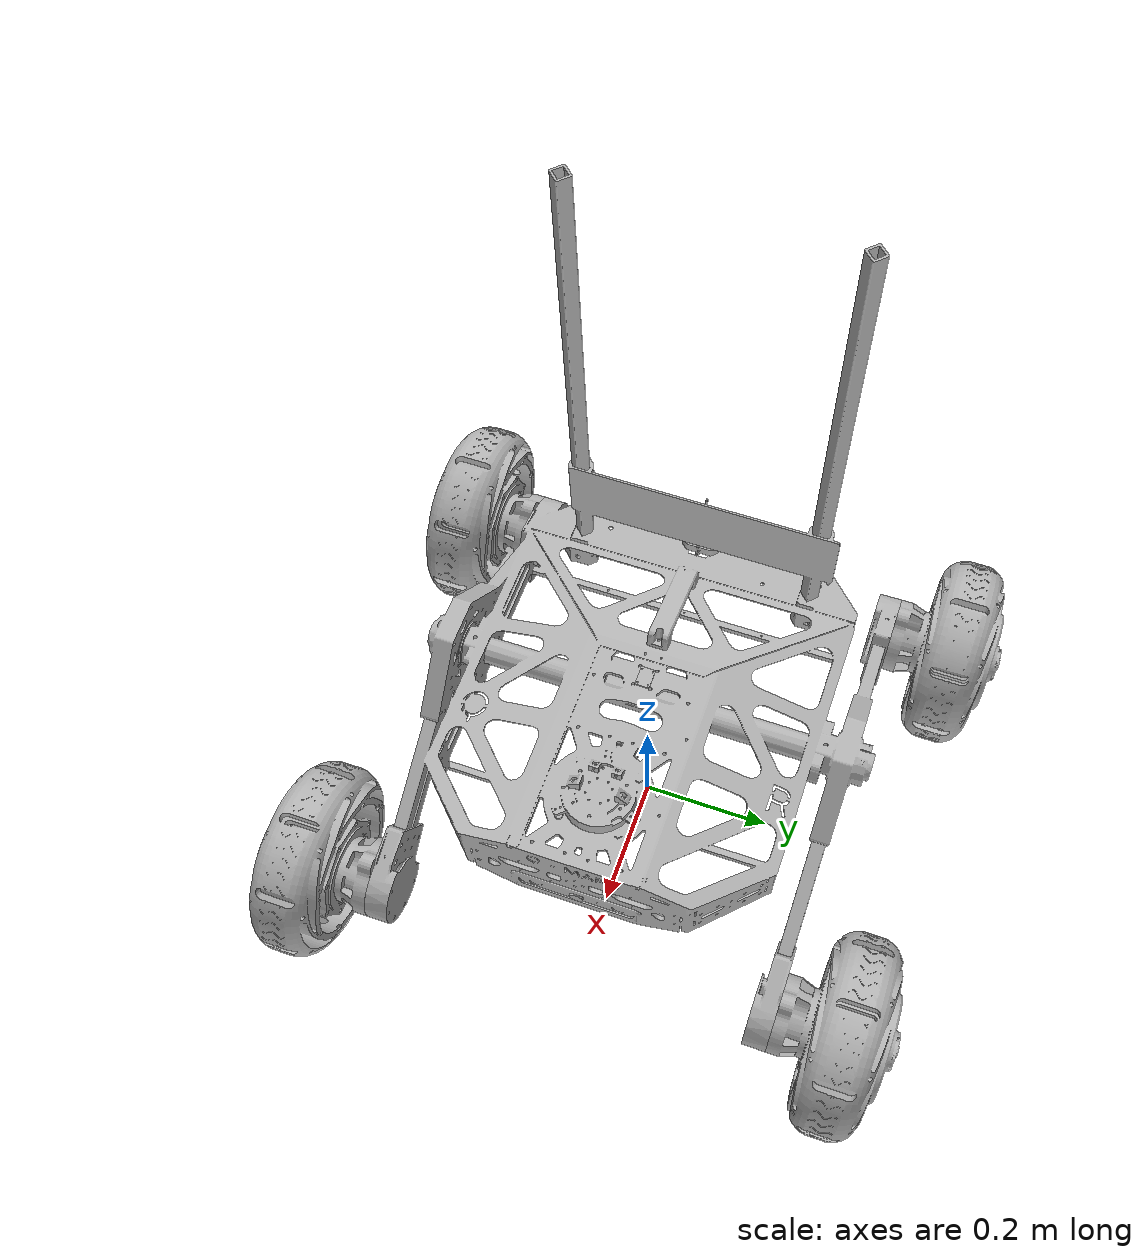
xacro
<?xml version="1.0" ?>
<robot name="qrteam_fusion" xmlns:xacro="http://www.ros.org/wiki/xacro">

<xacro:include filename="$(find qrteam_fusion_description)/urdf/materials.xacro" />
<xacro:include filename="$(find qrteam_fusion_description)/urdf/qrteam_fusion.trans" />
<xacro:include filename="$(find qrteam_fusion_description)/urdf/qrteam_fusion.gazebo" />
<link name="base_link">
  <inertial>
    <origin xyz="0.0020542122204478016 -7.085583154434214e-05 0.3297767084922408" rpy="0 0 0"/>
    <mass value="50.23002803653495"/>
    <inertia ixx="3.090604" iyy="2.957905" izz="4.455788" ixy="0.002625" iyz="-0.00172" ixz="0.179845"/>
  </inertial>
  <visual>
    <origin xyz="0 0 0" rpy="0 0 0"/>
    <geometry>
      <mesh filename="package://qrteam_fusion_description/meshes/base_link.stl" scale="0.001 0.001 0.001"/>
    </geometry>
    <material name="silver"/>
  </visual>
  <collision>
    <origin xyz="0 0 0" rpy="0 0 0"/>
    <geometry>
      <mesh filename="package://qrteam_fusion_description/meshes/base_link.stl" scale="0.001 0.001 0.001"/>
    </geometry>
  </collision>
</link>

<link name="front_right_wheel_1">
  <inertial>
    <origin xyz="6.353191570607208e-06 -0.09599480116610787 0.00017878868257395486" rpy="0 0 0"/>
    <mass value="20.194629183024283"/>
    <inertia ixx="0.132007" iyy="0.206335" izz="0.131564" ixy="-3e-06" iyz="-0.000246" ixz="-1e-06"/>
  </inertial>
  <visual>
    <origin xyz="-0.325003 0.305589 -0.146633" rpy="0 0 0"/>
    <geometry>
      <mesh filename="package://qrteam_fusion_description/meshes/front_right_wheel_1.stl" scale="0.001 0.001 0.001"/>
    </geometry>
    <material name="silver"/>
  </visual>
  <collision>
    <origin xyz="-0.325003 0.305589 -0.146633" rpy="0 0 0"/>
    <geometry>
      <mesh filename="package://qrteam_fusion_description/meshes/front_right_wheel_1.stl" scale="0.001 0.001 0.001"/>
    </geometry>
  </collision>
</link>

<link name="front_left_wheel_1">
  <inertial>
    <origin xyz="-7.267695750601266e-06 0.09599436271583278 0.00017907071490411153" rpy="0 0 0"/>
    <mass value="20.194629183024283"/>
    <inertia ixx="0.132007" iyy="0.206335" izz="0.131564" ixy="-3e-06" iyz="0.000246" ixz="1e-06"/>
  </inertial>
  <visual>
    <origin xyz="-0.325043 -0.305113 -0.146702" rpy="0 0 0"/>
    <geometry>
      <mesh filename="package://qrteam_fusion_description/meshes/front_left_wheel_1.stl" scale="0.001 0.001 0.001"/>
    </geometry>
    <material name="silver"/>
  </visual>
  <collision>
    <origin xyz="-0.325043 -0.305113 -0.146702" rpy="0 0 0"/>
    <geometry>
      <mesh filename="package://qrteam_fusion_description/meshes/front_left_wheel_1.stl" scale="0.001 0.001 0.001"/>
    </geometry>
  </collision>
</link>

<link name="front_back_wheel_1">
  <inertial>
    <origin xyz="-6.677739719240794e-06 0.09599436271585804 0.00017842969872644554" rpy="0 0 0"/>
    <mass value="20.194629183024283"/>
    <inertia ixx="0.132007" iyy="0.206335" izz="0.131564" ixy="-3e-06" iyz="0.000246" ixz="1e-06"/>
  </inertial>
  <visual>
    <origin xyz="0.321638 -0.305113 -0.146668" rpy="0 0 0"/>
    <geometry>
      <mesh filename="package://qrteam_fusion_description/meshes/front_back_wheel_1.stl" scale="0.001 0.001 0.001"/>
    </geometry>
    <material name="silver"/>
  </visual>
  <collision>
    <origin xyz="0.321638 -0.305113 -0.146668" rpy="0 0 0"/>
    <geometry>
      <mesh filename="package://qrteam_fusion_description/meshes/front_back_wheel_1.stl" scale="0.001 0.001 0.001"/>
    </geometry>
  </collision>
</link>

<link name="back_right_wheel_1">
  <inertial>
    <origin xyz="6.943147454530063e-06 -0.09599480116659342 0.00017907071536441" rpy="0 0 0"/>
    <mass value="20.194629183024283"/>
    <inertia ixx="0.132007" iyy="0.206335" izz="0.131564" ixy="-3e-06" iyz="-0.000246" ixz="-1e-06"/>
  </inertial>
  <visual>
    <origin xyz="0.321658 0.305589 -0.146702" rpy="0 0 0"/>
    <geometry>
      <mesh filename="package://qrteam_fusion_description/meshes/back_right_wheel_1.stl" scale="0.001 0.001 0.001"/>
    </geometry>
    <material name="silver"/>
  </visual>
  <collision>
    <origin xyz="0.321658 0.305589 -0.146702" rpy="0 0 0"/>
    <geometry>
      <mesh filename="package://qrteam_fusion_description/meshes/back_right_wheel_1.stl" scale="0.001 0.001 0.001"/>
    </geometry>
  </collision>
</link>

<link name="imu_frame_1">
  <inertial>
    <origin xyz="-4.0623827618144204e-07 -2.1922512724898845e-07 0.0009998814992088767" rpy="0 0 0"/>
    <mass value="0.009168799999999984"/>
    <inertia ixx="0.0" iyy="1e-06" izz="1e-06" ixy="0.0" iyz="0.0" ixz="-0.0"/>
  </inertial>
  <visual>
    <origin xyz="-0.009908 0.000238 -0.411586" rpy="0 0 0"/>
    <geometry>
      <mesh filename="package://qrteam_fusion_description/meshes/imu_frame_1.stl" scale="0.001 0.001 0.001"/>
    </geometry>
    <material name="silver"/>
  </visual>
  <collision>
    <origin xyz="-0.009908 0.000238 -0.411586" rpy="0 0 0"/>
    <geometry>
      <mesh filename="package://qrteam_fusion_description/meshes/imu_frame_1.stl" scale="0.001 0.001 0.001"/>
    </geometry>
  </collision>
</link>

<link name="laser_frame_1">
  <inertial>
    <origin xyz="0.0014995938469886672 -2.0705196583347134e-07 -1.184382540930784e-07" rpy="0 0 0"/>
    <mass value="0.007398450699203964"/>
    <inertia ixx="0.0" iyy="0.0" izz="0.0" ixy="-0.0" iyz="0.0" ixz="0.0"/>
  </inertial>
  <visual>
    <origin xyz="-0.299833 0.000238 -0.292356" rpy="0 0 0"/>
    <geometry>
      <mesh filename="package://qrteam_fusion_description/meshes/laser_frame_1.stl" scale="0.001 0.001 0.001"/>
    </geometry>
    <material name="silver"/>
  </visual>
  <collision>
    <origin xyz="-0.299833 0.000238 -0.292356" rpy="0 0 0"/>
    <geometry>
      <mesh filename="package://qrteam_fusion_description/meshes/laser_frame_1.stl" scale="0.001 0.001 0.001"/>
    </geometry>
  </collision>
</link>

<link name="gps_frame_1">
  <inertial>
    <origin xyz="-0.0003062415225861814 -2.1357971140230142e-07 0.010676465040457273" rpy="0 0 0"/>
    <mass value="0.5557884986952562"/>
    <inertia ixx="0.000183" iyy="0.000172" izz="0.000287" ixy="0.0" iyz="-0.0" ixz="-1e-06"/>
  </inertial>
  <visual>
    <origin xyz="0.260358 0.000238 -0.371731" rpy="0 0 0"/>
    <geometry>
      <mesh filename="package://qrteam_fusion_description/meshes/gps_frame_1.stl" scale="0.001 0.001 0.001"/>
    </geometry>
    <material name="silver"/>
  </visual>
  <collision>
    <origin xyz="0.260358 0.000238 -0.371731" rpy="0 0 0"/>
    <geometry>
      <mesh filename="package://qrteam_fusion_description/meshes/gps_frame_1.stl" scale="0.001 0.001 0.001"/>
    </geometry>
  </collision>
</link>

<joint name="JointFrontRight" type="continuous">
  <origin xyz="0.325003 -0.305589 0.146633" rpy="0 0 0"/>
  <parent link="base_link"/>
  <child link="front_right_wheel_1"/>
  <axis xyz="0.0 1.0 -0.0"/>
</joint>

<joint name="JointFrontLeft" type="continuous">
  <origin xyz="0.325043 0.305113 0.146702" rpy="0 0 0"/>
  <parent link="base_link"/>
  <child link="front_left_wheel_1"/>
  <axis xyz="0.0 1.0 0.0"/>
</joint>

<joint name="JointBackLeft" type="continuous">
  <origin xyz="-0.321638 0.305113 0.146668" rpy="0 0 0"/>
  <parent link="base_link"/>
  <child link="front_back_wheel_1"/>
  <axis xyz="0.0 1.0 -0.0"/>
</joint>

<joint name="JointBackRight" type="continuous">
  <origin xyz="-0.321658 -0.305589 0.146702" rpy="0 0 0"/>
  <parent link="base_link"/>
  <child link="back_right_wheel_1"/>
  <axis xyz="-0.0 1.0 0.0"/>
</joint>

<joint name="JointImu" type="fixed">
  <origin xyz="0.009908 -0.000238 0.411586" rpy="0 0 0"/>
  <parent link="base_link"/>
  <child link="imu_frame_1"/>
</joint>

<joint name="JointScan" type="fixed">
  <origin xyz="0.299833 -0.000238 0.292356" rpy="0 0 0"/>
  <parent link="base_link"/>
  <child link="laser_frame_1"/>
</joint>

<joint name="JointGps" type="fixed">
  <origin xyz="-0.260358 -0.000238 0.371731" rpy="0 0 0"/>
  <parent link="base_link"/>
  <child link="gps_frame_1"/>
</joint>

</robot>

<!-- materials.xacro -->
<robot name="qrteam_fusion" xmlns:xacro="http://www.ros.org/wiki/xacro" >

<material name="silver">
  <color rgba="0.700 0.700 0.700 1.000"/>
</material>

</robot>

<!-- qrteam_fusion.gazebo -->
<robot name="qrteam_fusion" xmlns:xacro="http://www.ros.org/wiki/xacro" >

<xacro:property name="body_color" value="Gazebo/Silver" />

<gazebo>
  <plugin name="control" filename="libgazebo_ros_control.so"/>
</gazebo>
<gazebo reference="base_link">
  <material>${body_color}</material>
  <mu1>0.2</mu1>
  <mu2>0.2</mu2>
  <selfCollide>true</selfCollide>
  <gravity>true</gravity>
</gazebo>

<gazebo reference="front_right_wheel_1">
  <material>${body_color}</material>
  <mu1>100</mu1>
  <mu2>100</mu2>
  <selfCollide>true</selfCollide>
</gazebo>

<gazebo reference="front_left_wheel_1">
  <material>${body_color}</material>
  <mu1>100</mu1>
  <mu2>100</mu2>
  <selfCollide>true</selfCollide>
</gazebo>

<gazebo reference="front_back_wheel_1">
  <material>${body_color}</material>
  <mu1>100</mu1>
  <mu2>100</mu2>
  <selfCollide>true</selfCollide>
</gazebo>

<gazebo reference="back_right_wheel_1">
  <material>${body_color}</material>
  <mu1>100</mu1>
  <mu2>100</mu2>
  <selfCollide>true</selfCollide>
</gazebo>

<gazebo reference="imu_frame_1">
  <material>${body_color}</material>
  <mu1>0.2</mu1>
  <mu2>0.2</mu2>
  <selfCollide>true</selfCollide>
</gazebo>

<gazebo reference="laser_frame_1">
  <material>${body_color}</material>
  <mu1>0.2</mu1>
  <mu2>0.2</mu2>
  <selfCollide>true</selfCollide>
</gazebo>

<gazebo reference="gps_frame_1">
  <material>${body_color}</material>
  <mu1>0.2</mu1>
  <mu2>0.2</mu2>
  <selfCollide>true</selfCollide>
</gazebo>

<gazebo>
  <plugin name="skid_steer_drive_controller" filename="libgazebo_ros_skid_steer_drive.so">
    <updateRate>20.0</updateRate>
    <robotNamespace>/</robotNamespace>
    <leftFrontJoint>JointFrontLeft</leftFrontJoint>
    <rightFrontJoint>JointFrontRight</rightFrontJoint>
    <leftRearJoint>JointBackLeft</leftRearJoint>
    <rightRearJoint>JointBackRight</rightRearJoint>
    <wheelSeparation>0.811</wheelSeparation>
    <wheelDiameter>0.290</wheelDiameter>
    <robotBaseFrame>base_link</robotBaseFrame>
    <torque>999999999999999999</torque>
    <topicName>cmd_vel</topicName>
    <broadcastTF>true</broadcastTF>
  </plugin>
</gazebo>

<!--  ##########  LIDAR PLUGIN  ##########  -->
<gazebo reference="laser_frame_1">
  <sensor type="ray" name="ydlidar">
    <pose>0 0 0 0 0 0</pose>
    <visualize>true</visualize>
    <update_rate>10</update_rate>
    <ray>
      <scan>
        <horizontal>
          <samples>720</samples>
          <resolution>1</resolution>
          <min_angle>-0.97</min_angle>
          <max_angle>0.97</max_angle>
        </horizontal>
      </scan>
      <range>
        <min>0.15</min>
        <max>12.0</max>
        <resolution>0.01</resolution>
      </range>
      <noise>
        <type>gaussian</type>
        <mean>0.0</mean>
        <stddev>0.01</stddev>
      </noise>
    </ray>
    <plugin name="gazebo_ros_head_hokuyo_controller" filename="libgazebo_ros_laser.so">
      <topicName>zed/scan</topicName>
      <frameName>laser_frame_1</frameName>
    </plugin>
  </sensor>
</gazebo>

<gazebo reference="imu_frame_1">
  <gravity>true</gravity>
  <sensor name="imu_sensor" type="imu">
    <always_on>true</always_on>
    <update_rate>100</update_rate>
    <visualize>true</visualize>
    <topic>__default_topic__</topic>
    <plugin filename="libgazebo_ros_imu_sensor.so" name="imu_plugin">
      <topicName>bno/imu</topicName>
      <bodyName>imu_frame_1</bodyName>
      <updateRateHZ>10.0</updateRateHZ>
      <gaussianNoise>0.0</gaussianNoise>
      <xyzOffset>0 0 0</xyzOffset>
      <rpyOffset>0 0 0</rpyOffset>
      <frameName>imu_frame_1</frameName>
      <initialOrientationAsReference>false</initialOrientationAsReference>
    </plugin>
    <pose>0 0 0 0 0 0</pose>
  </sensor>
</gazebo>

</robot>
